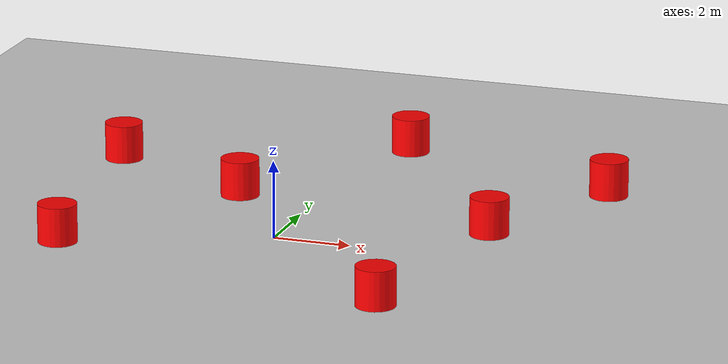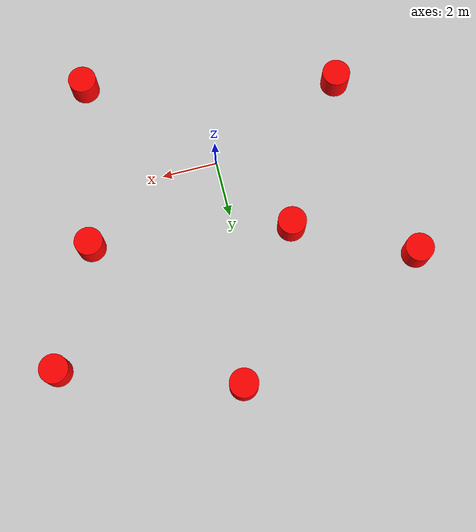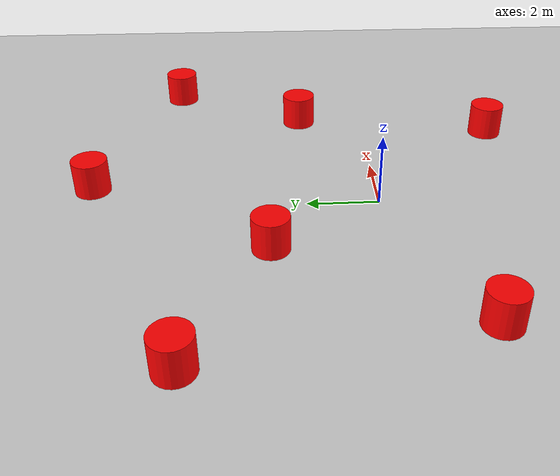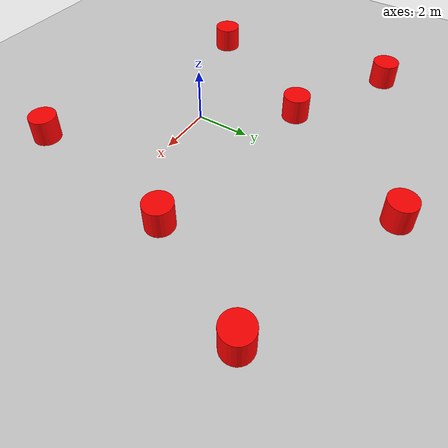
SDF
<sdf version="1.8">
 <world name="loop_world">
  <light type="directional" name="sun">
   <pose>0 0 10 0 0 0</pose>
   <diffuse>0.8 0.8 0.8 1</diffuse>
   <specular>0.2 0.2 0.2 1</specular>
   <direction>-0.5 0.1 -0.9</direction>
  </light>
  <model name="ground_plane">
   <static>true</static>
   <link name="link">
    <collision name="collision">
     <geometry><plane><normal>0 0 1</normal><size>20 20</size></plane></geometry>
    </collision>
    <visual name="visual">
     <geometry><plane><normal>0 0 1</normal><size>20 20</size></plane></geometry>
     <material><ambient>0.8 0.8 0.8 1</ambient><diffuse>0.8 0.8 0.8 1</diffuse></material>
    </visual>
   </link>
  </model>
  <model name="obstacle_2">
   <pose>5 2 0.5 0 0 0</pose>
   <static>true</static>
   <link name="link">
    <collision name="collision">
     <geometry><cylinder><radius>0.5</radius><length>1.0</length></cylinder></geometry>
    </collision>
    <visual name="visual">
     <geometry><cylinder><radius>0.5</radius><length>1.0</length></cylinder></geometry>
     <material><ambient>1 0 0 1</ambient><diffuse>1 0 0 1</diffuse></material>
    </visual>
   </link>
  </model>
  <model name="obstacle_3">
   <pose>-2 3 0.5 0 0 0</pose>
   <static>true</static>
   <link name="link">
    <collision name="collision">
     <geometry><cylinder><radius>0.5</radius><length>1.0</length></cylinder></geometry>
    </collision>
    <visual name="visual">
     <geometry><cylinder><radius>0.5</radius><length>1.0</length></cylinder></geometry>
     <material><ambient>1 0 0 1</ambient><diffuse>1 0 0 1</diffuse></material>
    </visual>
   </link>
  </model>
  <model name="obstacle_4">
   <pose>4 -4 0.5 0 0 0</pose>
   <static>true</static>
   <link name="link">
    <collision name="collision">
     <geometry><cylinder><radius>0.5</radius><length>1.0</length></cylinder></geometry>
    </collision>
    <visual name="visual">
     <geometry><cylinder><radius>0.5</radius><length>1.0</length></cylinder></geometry>
     <material><ambient>1 0 0 1</ambient><diffuse>1 0 0 1</diffuse></material>
    </visual>
   </link>
  </model>
  <model name="obstacle_5">
   <pose>7 6 0.5 0 0 0</pose>
   <static>true</static>
   <link name="link">
    <collision name="collision">
     <geometry><cylinder><radius>0.5</radius><length>1.0</length></cylinder></geometry>
    </collision>
    <visual name="visual">
     <geometry><cylinder><radius>0.5</radius><length>1.0</length></cylinder></geometry>
     <material><ambient>1 0 0 1</ambient><diffuse>1 0 0 1</diffuse></material>
    </visual>
   </link>
  </model>
  <model name="obstacle_6">
   <pose>-5 -2 0.5 0 0 0</pose>
   <static>true</static>
   <link name="link">
    <collision name="collision">
     <geometry><cylinder><radius>0.5</radius><length>1.0</length></cylinder></geometry>
    </collision>
    <visual name="visual">
     <geometry><cylinder><radius>0.5</radius><length>1.0</length></cylinder></geometry>
     <material><ambient>1 0 0 1</ambient><diffuse>1 0 0 1</diffuse></material>
    </visual>
   </link>
  </model>
  <model name="obstacle_7">
   <pose>1 8 0.5 0 0 0</pose>
   <static>true</static>
   <link name="link">
    <collision name="collision">
     <geometry><cylinder><radius>0.5</radius><length>1.0</length></cylinder></geometry>
    </collision>
    <visual name="visual">
     <geometry><cylinder><radius>0.5</radius><length>1.0</length></cylinder></geometry>
     <material><ambient>1 0 0 1</ambient><diffuse>1 0 0 1</diffuse></material>
    </visual>
   </link>
  </model>
  <model name="obstacle_8">
   <pose>-6 5 0.5 0 0 0</pose>
   <static>true</static>
   <link name="link">
    <collision name="collision">
     <geometry><cylinder><radius>0.5</radius><length>1.0</length></cylinder></geometry>
    </collision>
    <visual name="visual">
     <geometry><cylinder><radius>0.5</radius><length>1.0</length></cylinder></geometry>
     <material><ambient>1 0 0 1</ambient><diffuse>1 0 0 1</diffuse></material>
    </visual>
   </link>
  </model>
 </world>
</sdf>
